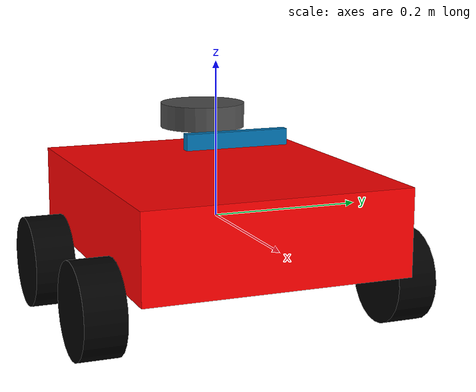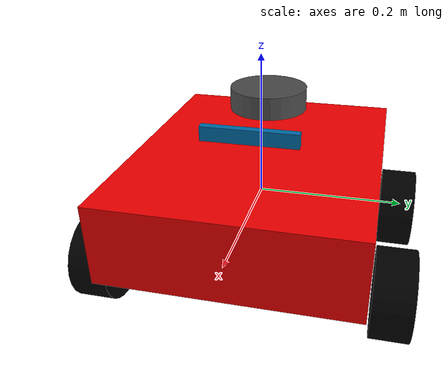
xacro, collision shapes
<?xml version="1.0" ?>
<robot name="turtlebot3_waffle" xmlns:xacro="http://ros.org/wiki/xacro">
  <xacro:include filename="$(find robodog1)/urdf/rbd_common_properties.xacro"/>
  <xacro:include filename="$(find robodog1)/urdf/rbd_turtlebot3_waffle.gazebo2.xacro"/>

  <xacro:property name="r200_cam_rgb_px" value="0.005"/>
  <xacro:property name="r200_cam_rgb_py" value="0.018"/>
  <xacro:property name="r200_cam_rgb_pz" value="0.013"/>
  <xacro:property name="r200_cam_depth_offset" value="0.01"/>

  <link name="base_footprint"/>

  <joint name="base_joint" type="fixed">
    <parent link="base_footprint"/>
    <child link="base_link" />
    <origin xyz="0 0 0.010" rpy="0 0 0"/>
  </joint>

  <link name="base_link">
    <visual>
        <geometry>
            <box size="0.40 0.32 0.05"/>
        </geometry>
        <material name="grey">
            <color rgba="1 0.0 0.0 1"/>
        </material>
    </visual>
    <collision>
      <geometry>
        <box size="0.42 0.34 0.11"/>
      </geometry>
    </collision>
    <inertial>
        <mass value="1.0"/>
        <inertia ixx="0.015" ixy="0" ixz="0" iyy="0.0375" iyz="0.0" izz="0.0375"/>
    </inertial>
  </link>

<!-- rodas frente -->

  <!-- roda frente esquerda -->

  <joint name="wheel_left_joint_frente" type="continuous">
    <parent link="base_link"/>
    <child link="wheel_left_link_frente"/>
    <origin xyz="0.115 0.20 -0.08" rpy="-1.57 0 0"/>
    <axis xyz="0 0 1"/>
  </joint>

  <link name="wheel_left_link_frente">
    <visual>
      <geometry>
        <cylinder radius="0.05" length="0.042"/>
      </geometry>
      <material name="blue">
        <color rgba="0.0 0.0 0.0 1"/>
      </material>
    </visual>
    <collision>
      <geometry>
        <cylinder radius="0.06" length="0.052"/>
      </geometry>
    </collision>
    <inertial>
      <mass value="0.1"/>
      <inertia ixx="5.1458e-5" ixy="0" ixz="0" iyy="5.1458e-5" iyz="0.0" izz="6.125e-5"/>
    </inertial>
  </link>

  <!-- roda frente direita -->

  <joint name="wheel_right_joint_frente" type="continuous">
    <parent link="base_link"/>
    <child link="wheel_right_link_frente"/>
    <origin xyz="0.115 -0.20 -0.08" rpy="-1.57 0 0"/>
    <axis xyz="0 0 1"/>
  </joint>

  <link name="wheel_right_link_frente">
    <visual>
      <geometry>
        <cylinder radius="0.05" length="0.042"/>
      </geometry>
      <material name="blue">
        <color rgba="0.0 0.0 0.0 1"/>
      </material>
    </visual>
    <collision>
      <geometry>
          <cylinder radius="0.06" length="0.052"/>
      </geometry>
    </collision>
    <inertial>
      <mass value="0.1"/>
      <inertia ixx="5.1458e-5" ixy="0" ixz="0" iyy="5.1458e-5" iyz="0.0" izz="6.125e-5"/>
    </inertial>
  </link>

  <!-- rodas tras -->

  <joint name="wheel_left_joint" type="continuous">
    <parent link="base_link"/>
    <child link="wheel_left_link"/>
    <origin xyz="-0.115 0.20 -0.08" rpy="-1.57 0 0"/>
    <axis xyz="0 0 1"/>
  </joint>

  <link name="wheel_left_link">
    <visual>
        <geometry>
            <cylinder radius="0.05" length="0.042"/>
        </geometry>
        <material name="blue">
            <color rgba="0.0 0.0 0.0 1"/>
        </material>
    </visual>
    <collision>
        <geometry>
            <cylinder radius="0.06" length="0.052"/>
        </geometry>
    </collision>
    <inertial>
        <mass value="0.1"/>
        <inertia ixx="5.1458e-5" ixy="0" ixz="0" iyy="5.1458e-5" iyz="0.0" izz="6.125e-5"/>
    </inertial>
  </link>

  <joint name="wheel_right_joint" type="continuous">
    <parent link="base_link"/>
    <child link="wheel_right_link"/>
    <origin xyz="-0.115 -0.20 -0.08" rpy="-1.57 0 0"/>
    <axis xyz="0 0 1"/>
  </joint>

  <link name="wheel_right_link">
    <visual>
        <geometry>
            <cylinder radius="0.05" length="0.042"/>
        </geometry>
        <material name="blue">
            <color rgba="0.0 0.0 0.0 1"/>
        </material>
    </visual>
    <collision>
        <geometry>
            <cylinder radius="0.06" length="0.052"/>
        </geometry>
    </collision>
    <inertial>
        <mass value="0.1"/>
        <inertia ixx="5.1458e-5" ixy="0" ixz="0" iyy="5.1458e-5" iyz="0.0" izz="6.125e-5"/>
    </inertial>
  </link>

  <!-- rodas fim -->
  <joint name="imu_joint" type="fixed">
    <parent link="base_link"/>
    <child link="imu_link"/>
    <origin xyz="0.0 0 0.068" rpy="0 0 0"/>
  </joint>

  <link name="imu_link"/>

  <joint name="scan_joint" type="fixed">
    <parent link="base_link"/>
    <child link="base_scan"/>
    <origin xyz="-0.064 0 0.122" rpy="0 0 0"/>
  </joint>

  <link name="base_scan">
    <visual>
      <origin xyz="0 0 0" rpy="0 0 0"/>
      <geometry>
        <mesh filename="package://turtlebot3_description/meshes/sensors/lds.stl" scale="0.001 0.001 0.001"/>
      </geometry>
      <material name="dark"/>
    </visual>
    <collision>
      <origin xyz="0.015 0 -0.0065" rpy="0 0 0"/>
      <geometry>
        <cylinder length="0.0315" radius="0.055"/>
      </geometry>
    </collision>
    <inertial>
      <mass value="0.114" />
      <origin xyz="0 0 0" />
      <inertia ixx="0.001" ixy="0.0" ixz="0.0"
               iyy="0.001" iyz="0.0"
               izz="0.001" />
    </inertial>
  </link>

<!-- ultrasom f -->
    <joint name="ultrasom_f_joint" type="fixed">
    <parent link="base_link"/>
    <child link="ultrasom_f_scan"/>
    <origin xyz="-0.064 0 0.122" rpy="0 0 0"/>
  </joint>

  <link name="ultrasom_f_scan">
    <visual>
      <origin xyz="0.2 0 0" rpy="0 0 0"/>
      <geometry>
        <mesh filename="package://turtlebot3_description/meshes/sensors/lds.stl" scale="0.001 0.001 0.001"/>
      </geometry>
      <material name="dark"/>
    </visual>
    <collision>
      <origin xyz="0.015 0 -0.0065" rpy="0 0 0"/>
      <geometry>
        <cylinder length="0.0315" radius="0.055"/>
      </geometry>
    </collision>
    <inertial>
      <mass value="0.114" />
      <origin xyz="0 0 0" />
      <inertia ixx="0.001" ixy="0.0" ixz="0.0"
               iyy="0.001" iyz="0.0"
               izz="0.001" />
    </inertial>
  </link>
<!-- ultrasom f fim -->
<!-- ultrasom t -->
    <joint name="ultrasom_t_joint" type="fixed">
    <parent link="base_link"/>
    <child link="ultrasom_t_scan"/>
    <origin xyz="-0.064 0 0.122" rpy="0 0 0"/>
  </joint>

  <link name="ultrasom_t_scan">
    <visual>
      <origin xyz="-0.1 0 0" rpy="0 0 3.133741"/>
      <geometry>
        <mesh filename="package://turtlebot3_description/meshes/sensors/lds.stl" scale="0.001 0.001 0.001"/>
      </geometry>
      <material name="dark"/>
    </visual>
    <collision>
      <origin xyz="0.015 0 -0.0065" rpy="0 0 0"/>
      <geometry>
        <cylinder length="0.0315" radius="0.055"/>
      </geometry>
    </collision>
    <inertial>
      <mass value="0.114" />
      <origin xyz="0 0 0" />
      <inertia ixx="0.001" ixy="0.0" ixz="0.0"
               iyy="0.001" iyz="0.0"
               izz="0.001" />
    </inertial>
  </link>
<!-- ultrasom t fim -->

<!-- ultrasom d -->
    <joint name="ultrasom_d_joint" type="fixed">
    <parent link="base_link"/>
    <child link="ultrasom_d_scan"/>
    <origin xyz="-0.064 0 0.122" rpy="0 0 0"/>
  </joint>

  <link name="ultrasom_d_scan">
    <visual>
      <origin xyz="0 0.1 0" rpy="0 0 1.558956"/>
      <geometry>
        <mesh filename="package://turtlebot3_description/meshes/sensors/lds.stl" scale="0.001 0.001 0.001"/>
      </geometry>
      <material name="dark"/>
    </visual>
    <collision>
      <origin xyz="0.015 0 -0.0065" rpy="0 0 0"/>
      <geometry>
        <cylinder length="0.0315" radius="0.055"/>
      </geometry>
    </collision>
    <inertial>
      <mass value="0.114" />
      <origin xyz="0 0 0" />
      <inertia ixx="0.001" ixy="0.0" ixz="0.0"
               iyy="0.001" iyz="0.0"
               izz="0.001" />
    </inertial>
  </link>
<!-- ultrasom d fim -->
<!-- ultrasom e -->
    <joint name="ultrasom_e_joint" type="fixed">
    <parent link="base_link"/>
    <child link="ultrasom_e_scan"/>
    <origin xyz="-0.064 0 0.122" rpy="0 0 0"/>
  </joint>

  <link name="ultrasom_e_scan">
    <visual>
      <origin xyz="0 -0.1 0" rpy="0 0 -1.569649"/>
      <geometry>
        <mesh filename="package://turtlebot3_description/meshes/sensors/lds.stl" scale="0.001 0.001 0.001"/>
      </geometry>
      <material name="dark"/>
    </visual>
    <collision>
      <origin xyz="0.015 0 -0.0065" rpy="0 0 0"/>
      <geometry>
        <cylinder length="0.0315" radius="0.055"/>
      </geometry>
    </collision>
    <inertial>
      <mass value="0.114" />
      <origin xyz="0 0 0" />
      <inertia ixx="0.001" ixy="0.0" ixz="0.0"
               iyy="0.001" iyz="0.0"
               izz="0.001" />
    </inertial>
  </link>
<!-- ultrasom e fim -->

  <joint name="camera_joint" type="fixed">
    <origin xyz="0.064 -0.065 0.094" rpy="0 0 0"/>
    <parent link="base_link"/>
    <child link="camera_link"/>
  </joint>

  <link name="camera_link">
    <visual>
    <origin xyz="0 0 0" rpy="1.57 0 1.57"/>
      <geometry>
        <mesh filename="package://turtlebot3_description/meshes/sensors/r200.dae" />
      </geometry>
    </visual>
    <collision>
      <origin xyz="0.003 0.065 0.007" rpy="0 0 0"/>
      <geometry>
        <box size="0.012 0.132 0.020"/>
      </geometry>
    </collision>
      <!-- This inertial field needs doesn't contain reliable data!! -->
  </link>

  <joint name="camera_rgb_joint" type="fixed">
    <origin xyz="${r200_cam_rgb_px} ${r200_cam_rgb_py} ${r200_cam_rgb_pz}" rpy="0 0 0"/>
    <parent link="camera_link"/>
    <child link="camera_rgb_frame"/>
  </joint>
  <link name="camera_rgb_frame"/>

  <joint name="camera_rgb_optical_joint" type="fixed">
    <origin xyz="0 0 0" rpy="-1.57 0 -1.57"/>
    <parent link="camera_rgb_frame"/>
    <child link="camera_rgb_optical_frame"/>
  </joint>

  <link name="camera_rgb_optical_frame"/>

  <joint name="camera_depth_joint" type="fixed">
    <origin xyz="${r200_cam_rgb_px} ${r200_cam_rgb_py + r200_cam_depth_offset} ${r200_cam_rgb_pz}" rpy="0 0 0"/>
    <parent link="camera_link"/>
    <child link="camera_depth_frame"/>
  </joint>

  <link name="camera_depth_frame"/>

  <joint name="camera_depth_optical_joint" type="fixed">
    <origin xyz="0 0 0" rpy="-1.57 0 -1.57"/>
    <parent link="camera_depth_frame"/>
    <child link="camera_depth_optical_frame"/>
  </joint>
  <link name="camera_depth_optical_frame"/>

</robot>

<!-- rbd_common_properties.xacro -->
<robot name="xacro_properties" xmlns:xacro="http://ros.org/wiki/xacro">

  <!-- Init colour -->
  <material name="black">
      <color rgba="0.0 0.0 0.0 1.0"/>
  </material>

  <material name="dark">
    <color rgba="0.3 0.3 0.3 1.0"/>
  </material>
  <material name="light_black">
    <color rgba="0.4 0.4 0.4 1.0"/>
  </material>

  <material name="blue">
    <color rgba="0.0 0.0 0.8 1.0"/>
  </material>

  <material name="green">
    <color rgba="0.0 0.8 0.0 1.0"/>
  </material>

  <material name="grey">
    <color rgba="0.5 0.5 0.5 1.0"/>
  </material>

  <material name="orange">
    <color rgba="${255/255} ${108/255} ${10/255} 1.0"/>
  </material>

  <material name="brown">
    <color rgba="${222/255} ${207/255} ${195/255} 1.0"/>
  </material>

  <material name="red">
    <color rgba="0.8 0.0 0.0 1.0"/>
  </material>

  <material name="white">
    <color rgba="1.0 1.0 1.0 1.0"/>
  </material>
</robot>
